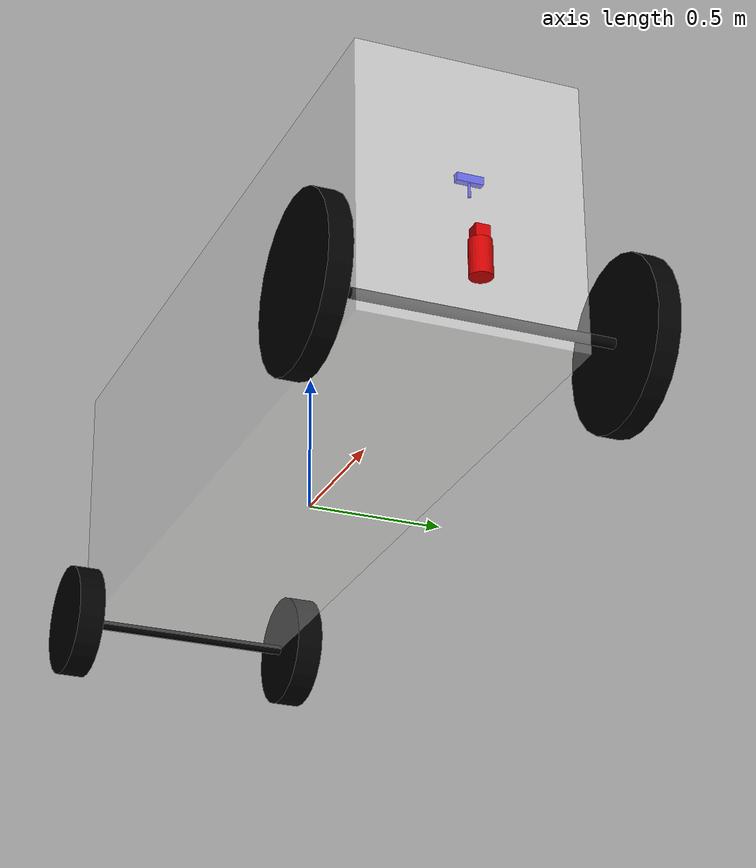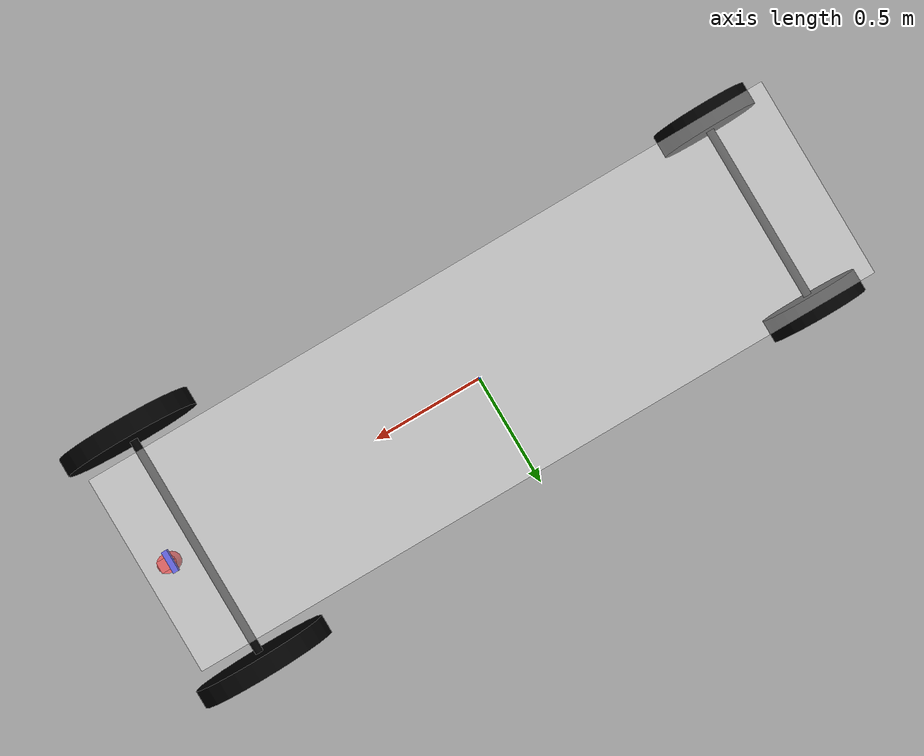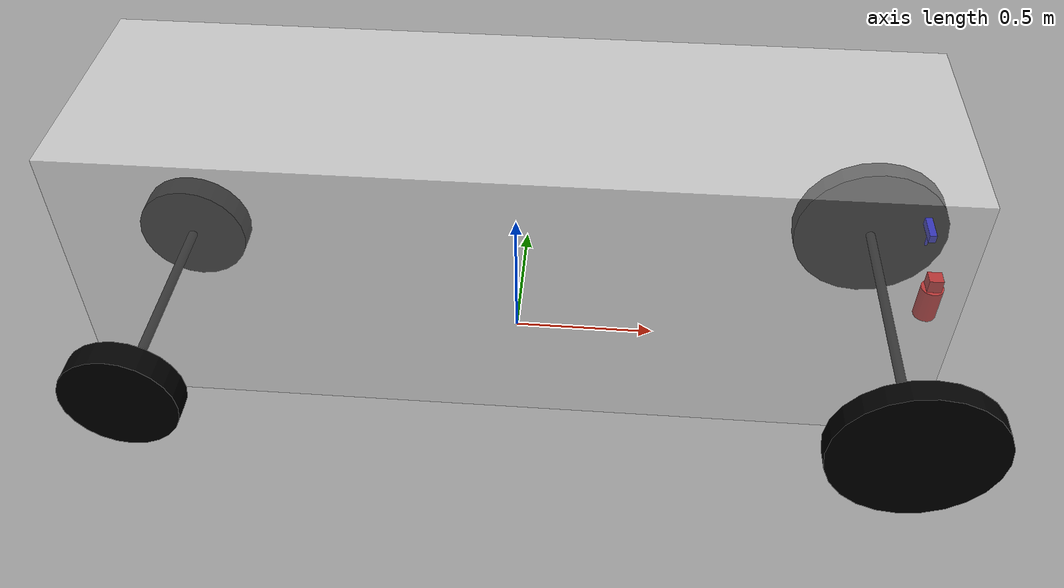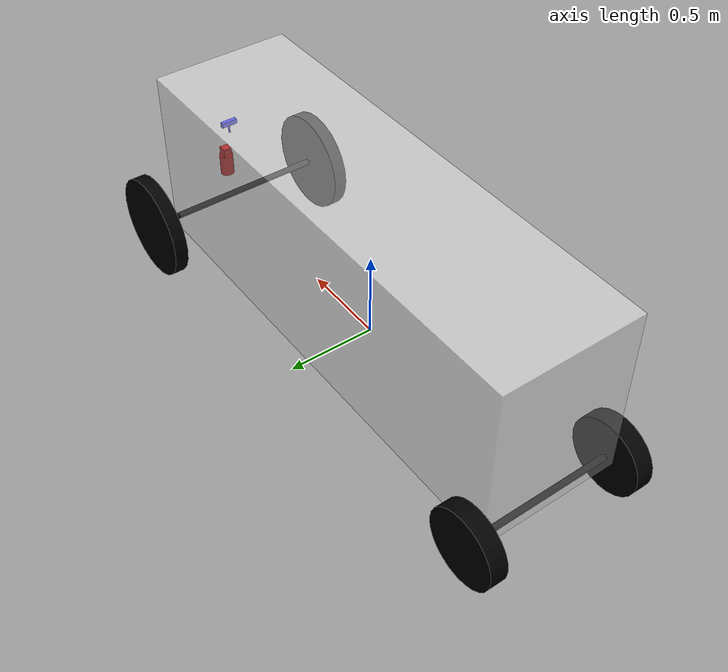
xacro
<?xml version="1.0"?>
<robot name="autonomous_car" xmlns:xacro="http://www.ros.org/wiki/xacro">

    <!-- X axis direction is forward, Y axis direction is left -->

    <xacro:include filename="$(find autonomous_car_description)/urdf/autonomous_car_functions.xacro" />
    <xacro:include filename="$(find autonomous_car_description)/urdf/autonomous_car_physical.xacro" />
    <xacro:include filename="$(find autonomous_car_description)/urdf/autonomous_car_joints.xacro" />
    <xacro:include filename="$(find autonomous_car_description)/urdf/autonomous_car_transmissions.xacro" />

    <link name="base_link" />

    <link name="baseplate">
        <visual>
            <material name="acrylic"/>
            <xacro:baseplate_geometry/>
        </visual>
        <collision>
            <xacro:baseplate_geometry/>
        </collision>
        <inertial>
            <xacro:baseplate_inertial/>
        </inertial>
    </link>
    <xacro:fixed_offset_joint parent="base_link" child="baseplate" offset="0 0 0"/>

    <link name="front_shaft">
        <visual>
            <material name="black"/>
            <xacro:front_shaft_geometry/>
        </visual>
        <collision>
            <xacro:front_shaft_geometry/>
        </collision>
        <inertial>
            <xacro:front_shaft_inertial/>
        </inertial>
    </link>
    <xacro:fixed_offset_joint parent="baseplate" child="front_shaft" offset="${front_to_rear_wheel_center/2} 0 ${(front_wheel_diameter - rear_wheel_diameter) / 2}"/>

    <link name="rear_shaft">
        <visual>
            <material name="black"/>
            <xacro:rear_shaft_geometry/>
        </visual>
        <collision>
            <xacro:rear_shaft_geometry/>
        </collision>
        <inertial>
            <xacro:rear_shaft_inertial/>
        </inertial>
    </link>
    <xacro:fixed_offset_joint parent="baseplate" child="rear_shaft" offset="-${front_to_rear_wheel_center/2} 0 0"/>

    <link name="front_right_hinge">
        <visual>
            <material name="white"/>
            <xacro:hinge_geometry/>
        </visual>
        <inertial>
            <xacro:hinge_inertial/>
        </inertial>
    </link>
    <xacro:hinge_joint parent="front_shaft" child="front_right_hinge" offset="0 -${front_left_to_right_wheel_center/2} 0"/>
    <xacro:hinge_transmission hinge="front_right_hinge"/>

    <link name="front_left_hinge">
        <visual>
            <material name="white"/>
            <xacro:hinge_geometry/>
        </visual>
        <inertial>
            <xacro:hinge_inertial/>
        </inertial>
    </link>
    <xacro:hinge_joint parent="front_shaft" child="front_left_hinge" offset="0 ${front_left_to_right_wheel_center/2} 0"/>
    <xacro:hinge_transmission hinge="front_left_hinge"/>

    <link name="front_right_wheel">
        <visual>
            <material name="black"/>
            <xacro:front_wheel_geometry/>
        </visual>
        <collision>
            <xacro:front_wheel_geometry/>
            <!-- mu=The friction coefficient, kp=Stiffness coefficient, kd=Dampening coefficient -->
        </collision>
        <inertial>
            <xacro:front_wheel_inertial/>
        </inertial>
    </link>
    <xacro:wheel_joint parent="front_right_hinge" child="front_right_wheel" offset="0 0 0"/>
    <xacro:wheel_transmission wheel="front_right_wheel"/>

    <link name="front_left_wheel">
        <visual>
            <material name="black"/>
            <xacro:front_wheel_geometry/>
        </visual>
        <collision>
            <xacro:front_wheel_geometry/>
            <!-- mu=The friction coefficient, kp=Stiffness coefficient, kd=Dampening coefficient -->
        </collision>
        <inertial>
            <xacro:front_wheel_inertial/>
        </inertial>
    </link>
    <xacro:wheel_joint parent="front_left_hinge" child="front_left_wheel" offset="0 0 0"/>
    <xacro:wheel_transmission wheel="front_left_wheel"/>

    <link name="rear_right_wheel">
        <visual>
            <material name="black"/>
            <xacro:rear_wheel_geometry/>
        </visual>
        <collision>
            <xacro:rear_wheel_geometry/>
            <!-- mu=The friction coefficient, kp=Stiffness coefficient, kd=Dampening coefficient -->
        </collision>
        <inertial>
            <xacro:rear_wheel_inertial/>
        </inertial>
    </link>
    <xacro:wheel_joint parent="rear_shaft" child="rear_right_wheel" offset="0 -${rear_left_to_right_wheel_center/2} 0"/>
    <xacro:wheel_transmission wheel="rear_right_wheel"/>

    <link name="rear_left_wheel">
        <visual>
            <material name="black"/>
            <xacro:rear_wheel_geometry/>
        </visual>
        <collision>
            <xacro:rear_wheel_geometry/>
            <!-- mu=The friction coefficient, kp=Stiffness coefficient, kd=Dampening coefficient -->
        </collision>
        <inertial>
            <xacro:rear_wheel_inertial/>
        </inertial>
    </link>
    <xacro:wheel_joint parent="rear_shaft" child="rear_left_wheel" offset="0 ${rear_left_to_right_wheel_center/2} 0"/>
    <xacro:wheel_transmission wheel="rear_left_wheel"/>

    <xacro:include filename="$(find autonomous_car_description)/urdf/autonomous_car_gazebo.xacro" />
    <xacro:include filename="$(find autonomous_car_description)/urdf/autonomous_car_materials.xacro" />

    <link name="camera_mount">
        <visual>
            <material name="blue"/>
            <xacro:camera_mount_geometry/>
        </visual>
        <collision>
            <xacro:camera_mount_geometry/>
        </collision>
        <inertial>
            <xacro:camera_mount_inertial/>
        </inertial>
    </link>
    <xacro:fixed_offset_joint parent="baseplate" child="camera_mount" offset="${baseplate_length/2-baseplate_frontedge_to_camera} 0 ${baseplate_thickness/2}"/>

    <link name="front_camera_link">
        <visual>
            <material name="blue"/>
            <xacro:camera_geometry/>
        </visual>
        <collision>
            <xacro:camera_geometry/>
        </collision>
        <inertial>
            <xacro:camera_inertial/>
        </inertial>
    </link>
    <xacro:fixed_offset_joint parent="camera_mount" child="front_camera_link" offset="0 0 ${camera_mount_height+camera_height/2}"/>

    <link name="hokuyo_mount">
        <visual>
            <material name="red"/>
            <xacro:lidar_mount_geometry/>
        </visual>
        <collision>
            <xacro:lidar_mount_geometry/>
        </collision>
        <inertial>
            <xacro:lidar_mount_inertial/>
        </inertial>
    </link>
    <xacro:fixed_offset_joint parent="baseplate" child="hokuyo_mount" offset="${front_to_rear_wheel_center/2 + 0.1} 0 +${front_wheel_diameter - rear_wheel_diameter}"/>

    <link name="hokuyo_link">
        <visual>
            <material name="red"/>
            <xacro:lidar_geometry/>
        </visual>
        <collision>
            <xacro:lidar_geometry/>
        </collision>
        <inertial>
            <xacro:lidar_inertial/>
        </inertial>
    </link>
    <xacro:fixed_offset_joint parent="hokuyo_mount" child="hokuyo_link" offset="0 0 ${lidar_mount_height}"/>

</robot>

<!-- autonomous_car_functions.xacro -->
<robot name="autonomous_car" xmlns:xacro="http://www.ros.org/wiki/xacro">

    <!-- Based on https://en.wikipedia.org/wiki/List_of_moments_of_inertia -->
    <xacro:macro name="box_inertial" params="mass width length height">
        <mass value="${mass}" />
        <inertia ixx="${1/12*mass*(width*width+height*height)}"
             ixy="0"
             ixz="0"
             iyy="${1/12*mass*(length*length+height*height)}"
             iyz="0"
             izz="${1/12*mass*(width*width+length*length)}"
        />
    </xacro:macro>

    <xacro:macro name="cylinder_inertial" params="mass radius length">
        <mass value="${mass}" />
        <inertia ixx="${1/12*mass*(3*radius*radius+length*length)}"
             ixy="0"
             ixz="0"
             iyy="${1/12*mass*(3*radius*radius+length*length)}"
             iyz="0"
             izz="${1/2*mass*radius*radius}"
        />
    </xacro:macro>

    <macro name="sphere_inertial" params="mass radius">
        <mass value="${mass}" />
        <inertia  ixx="${2*mass*radius*radius/5}"
            ixy = "0"
            ixz = "0"
            iyy="${2*mass*radius*radius/5}"
            iyz = "0"
            izz="${2*mass*radius*radius/5}"
        />
    </macro>

</robot>

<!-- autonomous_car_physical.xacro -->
<robot name="autonomous_car" xmlns:xacro="http://www.ros.org/wiki/xacro">

    <!-- X axis direction is forward, Y axis direction is left -->

    <!-- IMU related properties -->
    <xacro:property name="imu_width" value="0.05" />
    <xacro:property name="imu_length" value="0.05" />
    <xacro:property name="imu_height" value="0.03" />

    <!-- Wheel related properties -->
    <xacro:property name="front_wheel_diameter" value="0.600" />
    <xacro:property name="front_wheel_thickness" value="0.080" />
    <xacro:property name="front_wheel_weight" value="0.150" />

    <xacro:property name="rear_wheel_diameter" value="0.430" />
    <xacro:property name="rear_wheel_thickness" value="0.100" />
    <xacro:property name="rear_wheel_weight" value="0.150" />

    <!-- suspension stiffness, damping, and limits -->
    <xacro:property name="susp_travel" value="${wheel_diameter/2}"/>
    <xacro:property name="susp_lower" value="${-susp_travel/2}"/>
    <xacro:property name="susp_upper" value="${susp_travel/2}"/>
    <xacro:property name="susp_damping" value="70"/>
    <xacro:property name="susp_stiffness" value="5"/>
    <xacro:property name="susp_spring_center" value="0.05"/>

    <!-- RC car physical layout -->
    <xacro:property name="front_to_rear_wheel_center" value="2.717" />
    <xacro:property name="front_left_to_right_wheel_center" value="1.100" />
    <xacro:property name="rear_left_to_right_wheel_center" value="0.900" />
    <xacro:property name="baseplate_to_wheel_center" value="0.300" />

    <!-- Baseplate related properties -->
    <xacro:property name="baseplate_width" value="0.800" />
    <xacro:property name="baseplate_length" value="2.817" />
    <xacro:property name="baseplate_thickness" value="0.996" />
    <xacro:property name="baseplate_weight" value="0.500" />

    <!-- Shaft and mount related properties -->
    <xacro:property name="mount_weight" value="0.500" />
    <xacro:property name="shaft_weight" value="0.100" />

    <!-- Camera related properties -->
    <xacro:property name="camera_width" value="0.094" />
    <xacro:property name="camera_height" value="0.029" />
    <xacro:property name="camera_depth" value="0.024" />
    <xacro:property name="camera_weight" value="0.162" />
    <xacro:property name="baseplate_frontedge_to_camera" value="0.02" />
    <xacro:property name="camera_mount_height" value="0.05" />
    <xacro:property name="camera_mount_diameter" value="0.01" />
    <xacro:property name="camera_disparity" value="0.14" />

    <!-- LiDAR related properties -->
    <xacro:property name="lidar_width" value="0.05" />
    <xacro:property name="lidar_length" value="0.05" />
    <xacro:property name="lidar_height" value="0.05" />
    <xacro:property name="lidar_weight" value="0.200" />
    <xacro:property name="lidar_mount_diameter" value="0.08" />
    <xacro:property name="lidar_mount_height" value="0.13" />

    <!-- Steering related properties -->
    <xacro:property name="steering_wheel_angle_limit" value="${30/180*pi}" />

    <!-- IMU -->
    <xacro:macro name="imu_geometry">
        <origin xyz="0 0 0" rpy="0 0 0" /> <!-- origin (0,0,0) is in the center of the box -->
        <geometry>
            <box size="${imu_length} ${imu_width} ${imu_height}"/> <!-- 50x50x30 mm, Please confirm against 3D drawings -->
        </geometry>
    </xacro:macro>
    <xacro:macro name="imu_inertial">
        <origin xyz="0 0 0" rpy="0 0 0" /> <!-- origin (0,0,0) is in the center of the box -->
        <xacro:box_inertial mass="0.010" length="${imu_length}" width="${imu_width}" height="${imu_height}" /> <!-- 10 grams -->
    </xacro:macro>

    <!-- Baseplate -->
    <xacro:macro name="baseplate_geometry">
        <origin xyz="0 0 ${baseplate_thickness/2}" rpy="0 0 0" /> <!-- origin (0,0,0) is in the center of the box, so place the origin of this in the bottom of baseplate -->
        <geometry>
            <box size="${baseplate_length} ${baseplate_width} ${baseplate_thickness}"/> <!-- 50x20x6.75 cm, X-axis is front of vehicle -->
        </geometry>
    </xacro:macro>
    <xacro:macro name="baseplate_inertial">
        <origin xyz="0 0 ${baseplate_thickness/2}" rpy="0 0 0" /> <!-- origin (0,0,0) is in the center of the box, so place the origin of this in the bottom of baseplate -->
        <xacro:box_inertial mass="${baseplate_weight}" length="${baseplate_length}" width="${baseplate_width}" height="${baseplate_thickness}" />
    </xacro:macro>

    <!-- Mount -->
    <xacro:macro name="front_mount_geometry">
        <origin xyz="0 0 0" rpy="0 1.570796327 0" /> <!-- origin (0,0,0) is in the center of the box -->
        <geometry>
            <box size="0.05 0.12 0.01"/>
        </geometry>
    </xacro:macro>
    <xacro:macro name="rear_mount_geometry">
        <origin xyz="0 0 0" rpy="0 -1.570796327 0" /> <!-- origin (0,0,0) is in the center of the box -->
        <geometry>
            <box size="0.05 0.12 0.01"/>
        </geometry>
    </xacro:macro>
    <xacro:macro name="front_mount_inertial">
        <origin xyz="0 0 0" rpy="0 1.570796327 0" /> <!-- origin (0,0,0) is in the center of the box -->
        <xacro:box_inertial mass="${mount_weight}" length="0.05" width="0.12" height="0.01" />
    </xacro:macro>
    <xacro:macro name="rear_mount_inertial">
        <origin xyz="0 0 0" rpy="0 -1.570796327 0" /> <!-- origin (0,0,0) is in the center of the box -->
        <xacro:box_inertial mass="${mount_weight}" length="0.05" width="0.12" height="0.01" />
    </xacro:macro>

    <!-- Shaft -->
    <xacro:macro name="front_shaft_geometry">
        <origin xyz="0 0 0" rpy="1.570796327 0 0" /> <!-- origin (0,0,0) is in the center of the cylinder -->
        <geometry>
            <cylinder length="${front_left_to_right_wheel_center}" radius="0.018"/> <!-- confirm length between wheels -->
        </geometry>
    </xacro:macro>
    <xacro:macro name="front_shaft_inertial">
        <origin xyz="0 0 0" rpy="1.570796327 0 0" /> <!-- origin (0,0,0) is in the center of the cylinder -->
        <xacro:cylinder_inertial mass="${shaft_weight}" radius="0.018" length="${front_left_to_right_wheel_center}" />
    </xacro:macro>

    <xacro:macro name="rear_shaft_geometry">
        <origin xyz="0 0 0" rpy="1.570796327 0 0" /> <!-- origin (0,0,0) is in the center of the cylinder -->
        <geometry>
            <cylinder length="${rear_left_to_right_wheel_center}" radius="0.018"/> <!-- confirm length between wheels -->
        </geometry>
    </xacro:macro>
    <xacro:macro name="rear_shaft_inertial">
        <origin xyz="0 0 0" rpy="1.570796327 0 0" /> <!-- origin (0,0,0) is in the center of the cylinder -->
        <xacro:cylinder_inertial mass="${shaft_weight}" radius="0.018" length="${rear_left_to_right_wheel_center}" />
    </xacro:macro>

    <!-- Hinge -->
    <xacro:macro name="hinge_geometry">
        <origin xyz="0 0 0" rpy="0 0 0" />
        <geometry>
            <sphere radius="0.015"/>
        </geometry>
    </xacro:macro>
    <xacro:macro name="hinge_inertial">
        <origin xyz="0 0 0" rpy="0 0 0" />
        <mass value="0.05" />
        <inertia ixx="1e-6" ixy="0" ixz="0" iyy="1e-6" iyz="0" izz="1e-6" /> <!-- small inertia -->
    </xacro:macro>

    <!-- Wheel -->
    <xacro:macro name="front_wheel_geometry">
        <origin xyz="0 0 0" rpy="1.570796327 0 0" /> <!-- origin (0,0,0) is in the center of the cylinder -->
        <geometry>
            <cylinder length="${front_wheel_thickness}" radius="${front_wheel_diameter/2}"/>
        </geometry>
    </xacro:macro>
    <xacro:macro name="front_wheel_inertial">
        <origin xyz="0 0 0" rpy="1.570796327 0 0" /> <!-- origin (0,0,0) is in the center of the cylinder -->
        <xacro:cylinder_inertial mass="${front_wheel_weight}" radius="${front_wheel_diameter/2}" length="${front_wheel_thickness}" />
    </xacro:macro>

    <xacro:macro name="rear_wheel_geometry">
        <origin xyz="0 0 0" rpy="1.570796327 0 0" /> <!-- origin (0,0,0) is in the center of the cylinder -->
        <geometry>
            <cylinder length="${rear_wheel_thickness}" radius="${rear_wheel_diameter/2}"/>
        </geometry>
    </xacro:macro>
    <xacro:macro name="rear_wheel_inertial">
        <origin xyz="0 0 0" rpy="1.570796327 0 0" /> <!-- origin (0,0,0) is in the center of the cylinder -->
        <xacro:cylinder_inertial mass="${rear_wheel_weight}" radius="${rear_wheel_diameter/2}" length="${rear_wheel_thickness}" />
    </xacro:macro>

    <!-- Camera -->
    <xacro:macro name="camera_mount_geometry">
        <origin xyz="0 0 ${camera_mount_height/2}" rpy="0 0 0" /> <!-- origin (0,0,0) is in the center of the box -->
        <geometry>
            <cylinder length="${camera_mount_height}" radius="${camera_mount_diameter/2}"/> <!-- confirm length between wheels -->
        </geometry>
    </xacro:macro>
    <xacro:macro name="camera_mount_inertial">
        <origin xyz="0 0 0" rpy="0 0 0" /> <!-- origin (0,0,0) is in the center of the box -->
        <mass value="0.005" /> <!-- 5 grams -->
        <inertia ixx="1e-6" ixy="0" ixz="0" iyy="1e-6" iyz="0" izz="1e-6" /> <!-- small inertia -->
    </xacro:macro>

    <xacro:macro name="camera_geometry">
        <origin xyz="0 0 0" rpy="0 0 0" /> <!-- origin (0,0,0) is in the center of the box -->
        <geometry>
            <box size="${camera_depth} ${camera_width} ${camera_height}"/>
        </geometry>
    </xacro:macro>
    <xacro:macro name="camera_inertial">
        <origin xyz="0 0 0" rpy="0 0 0" /> <!-- origin (0,0,0) is in the center of the box -->
        <xacro:box_inertial mass="${camera_weight}" length="${camera_depth}" width="${camera_width}" height="${camera_height}" />
    </xacro:macro>

    <!-- LiDAR -->
    <xacro:macro name="lidar_mount_geometry">
        <origin xyz="0 0 ${lidar_mount_height/2}" rpy="0 0 0" /> <!-- origin (0,0,0) is in the center of the box -->
        <geometry>
            <cylinder length="${lidar_mount_height}" radius="${lidar_mount_diameter/2}"/> <!-- confirm length between wheels -->
        </geometry>
    </xacro:macro>
    <xacro:macro name="lidar_mount_inertial">
        <origin xyz="0 0 0" rpy="0 0 0" /> <!-- origin (0,0,0) is in the center of the box -->
        <mass value="0.020" />
        <inertia ixx="1e-7" ixy="0" ixz="0" iyy="1e-7" iyz="0" izz="1e-7" />
    </xacro:macro>

    <xacro:macro name="lidar_geometry">
        <origin xyz="0 0 ${lidar_height/2}" rpy="0 0 0" /> <!-- origin (0,0,0) is in the center of the box -->
        <geometry>
            <box size="${lidar_length} ${lidar_width} ${lidar_height}"/>
        </geometry>
    </xacro:macro>
    <xacro:macro name="lidar_inertial">
        <origin xyz="0 0 0" rpy="0 0 0" /> <!-- origin (0,0,0) is in the center of the box -->
        <xacro:box_inertial mass="${lidar_weight}" length="${lidar_length}" width="${lidar_width}" height="${lidar_height}" />
    </xacro:macro>

</robot>

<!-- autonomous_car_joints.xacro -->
<robot name="autonomous_car" xmlns:xacro="http://www.ros.org/wiki/xacro">

    <xacro:macro name="fixed_offset_joint" params="parent child offset">
        <joint name="${parent}_to_${child}" type="fixed">
            <parent link="${parent}"/>
            <child link="${child}"/>
            <origin xyz="${offset}" rpy="0 0 0" /> <!-- offset from parent to child, so with direction based in parent frame -->
        </joint>
    </xacro:macro>

    <xacro:macro name="dampener_joint" params="parent child offset">
        <joint name="${parent}_to_${child}" type="prismatic">
            <parent link="${parent}"/>
            <child link="${child}"/>
            <origin xyz="${offset}" rpy="0 0 0" /> <!-- offset from parent to child, so with direction based in parent frame -->
            <axis xyz="0 0 -1"/> <!-- suspension works up and down -->
            <limit lower="${susp_lower}" upper="${susp_upper}" effort="0" velocity="0"/>
                <dynamics damping="${susp_damping}" spring_stiffness="${susp_stiffness}" spring_reference="${susp_spring_center}"/>
            <physics>
                <ode>
                    <implicit_spring_damper>0</implicit_spring_damper>
                </ode>
            </physics>
        </joint>
    </xacro:macro>

    <xacro:macro name="hinge_joint" params="parent child offset">
        <joint name="${child}_joint" type="revolute"> <!-- revolute is a joint with a range limited motion around its' axis -->
            <parent link="${parent}"/>
            <child link="${child}"/>
            <origin xyz="${offset}" rpy="0 0 0" /> <!-- offset from parent to child, so with direction based in parent frame -->
            <axis xyz="0 0 1"/>
                <limit lower="-${steering_wheel_angle_limit}" upper="${steering_wheel_angle_limit}" effort="10" velocity="100"/> <!-- effeort is similar to torque/acceleration -->
            <!-- friction - The physical static friction. For prismatic joints, the units are Newtons. For revolving joints, the units are Newton meters. -->
            <!-- damping - The physical damping value. For prismatic joints, the units are Newton seconds per meter. For revolving joints, Newton meter secons per radian. -->
        </joint>
    </xacro:macro>

    <xacro:macro name="wheel_joint" params="parent child offset">
        <joint name="${child}_joint" type="continuous"> <!-- continuous is a joint of continous motion around its' axis -->
            <parent link="${parent}"/>
            <child link="${child}"/>
            <origin xyz="${offset}" rpy="0 0 0" /> <!-- offset from parent to child, so with direction based in parent frame -->
            <axis xyz="0 1 0"/>
            <!-- friction - The physical static friction. For prismatic joints, the units are Newtons. For revolving joints, the units are Newton meters. -->
            <!-- damping - The physical damping value. For prismatic joints, the units are Newton seconds per meter. For revolving joints, Newton meter secons per radian. -->
            <limit effort="10" velocity="100"/>
        </joint>
    </xacro:macro>

</robot>

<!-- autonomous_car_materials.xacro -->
<robot name="autonomous_car" xmlns:xacro="http://www.ros.org/wiki/xacro">

<material name="black">
  <color rgba="0.0 0.0 0.0 1.0"/>
</material>

<material name="blue">
  <color rgba="0.0 0.0 0.8 1.0"/>
</material>

<material name="green">
  <color rgba="0.0 0.8 0.0 1.0"/>
</material>

<material name="grey">
  <color rgba="0.2 0.2 0.2 1.0"/>
</material>

<material name="orange">
  <color rgba="${255/255} ${108/255} ${10/255} 1.0"/>
</material>

<material name="brown">
  <color rgba="${222/255} ${207/255} ${195/255} 1.0"/>
</material>

<material name="red">
  <color rgba="0.8 0.0 0.0 1.0"/>
</material>

<material name="white">
  <color rgba="1.0 1.0 1.0 1.0"/>
</material>

<material name="acrylic">
  <color rgba="1.0 1.0 1.0 0.4"/>
</material>

</robot>
